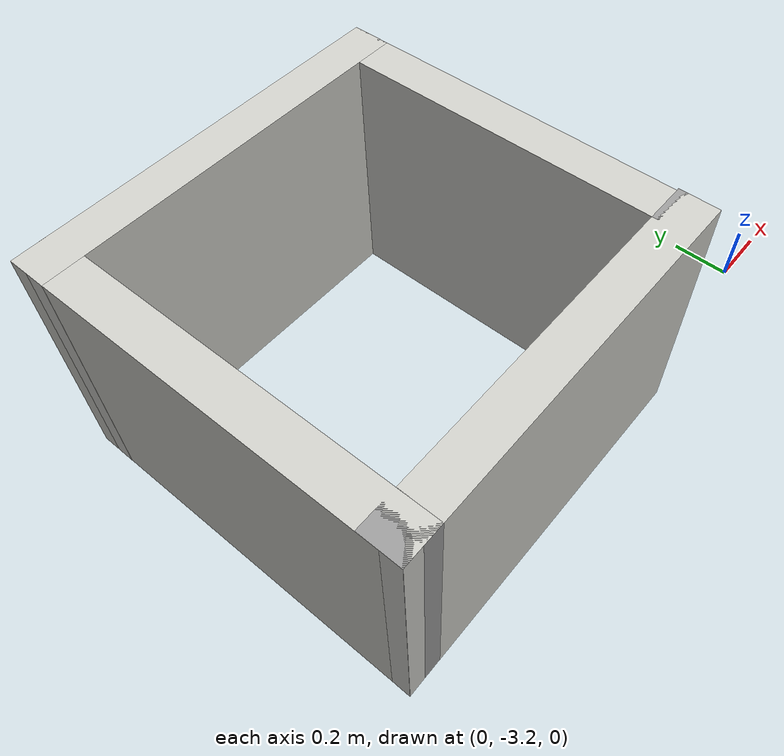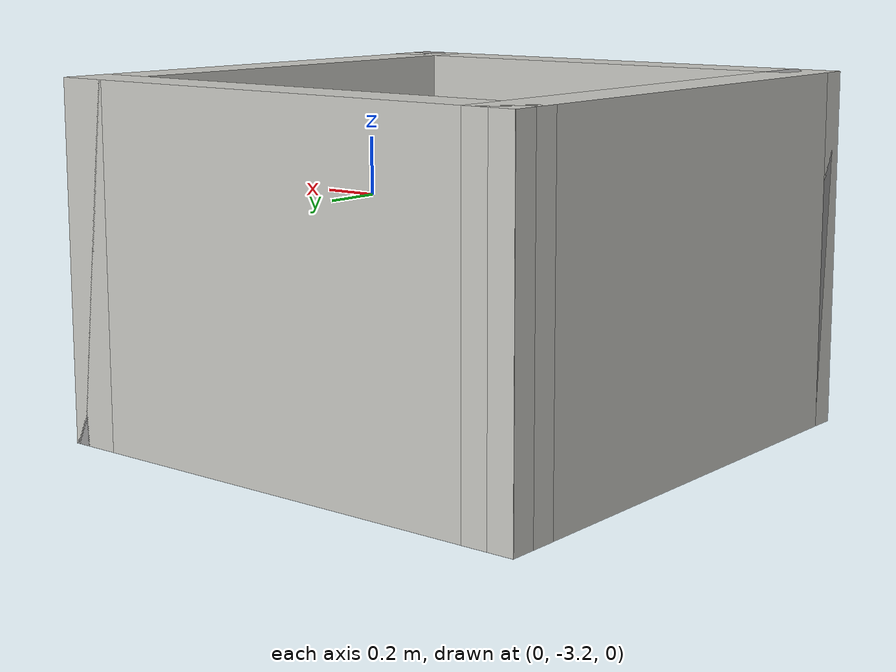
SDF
<?xml version='1.0'?>
<sdf version='1.6'>
  <model name='cap_test'>
    <pose frame=''>-1.01028 -2.435 0 0 -0 0</pose>
    <link name='Wall_0'>
      <collision name='Wall_0_Collision'>
        <geometry>
          <box>
            <size>1.5 0.15 1</size>
          </box>
        </geometry>
        <pose frame=''>0 0 0 0 -0 0</pose>
      </collision>
      <visual name='Wall_0_Visual'>
        <pose frame=''>0 0 0 0 -0 0</pose>
        <geometry>
          <box>
            <size>1.5 0.15 1</size>
          </box>
        </geometry>
        <material>
          <script>
            <uri>file://media/materials/scripts/gazebo.material</uri>
            <name>Gazebo/CeilingTiled</name>
          </script>
          <ambient>1 1 1 1</ambient>
        </material>
        <meta>
          <layer>0</layer>
        </meta>
      </visual>
      <pose frame=''>-0.004723 0.675 0 0 -0 0</pose>
    </link>
    <link name='Wall_1'>
      <collision name='Wall_1_Collision'>
        <geometry>
          <box>
            <size>0.15 0.15 1</size>
          </box>
        </geometry>
        <pose frame=''>0 0 0 0 -0 0</pose>
      </collision>
      <visual name='Wall_1_Visual'>
        <pose frame=''>0 0 0 0 -0 0</pose>
        <geometry>
          <box>
            <size>0.15 0.15 1</size>
          </box>
        </geometry>
        <material>
          <script>
            <uri>file://media/materials/scripts/gazebo.material</uri>
            <name>Gazebo/Grey</name>
          </script>
          <ambient>1 1 1 1</ambient>
        </material>
        <meta>
          <layer>0</layer>
        </meta>
      </visual>
      <pose frame=''>0.670277 0.675 0 0 -0 0</pose>
    </link>
    <link name='Wall_2'>
      <collision name='Wall_2_Collision'>
        <geometry>
          <box>
            <size>1.5 0.15 1</size>
          </box>
        </geometry>
        <pose frame=''>0 0 0 0 -0 0</pose>
      </collision>
      <visual name='Wall_2_Visual'>
        <pose frame=''>0 0 0 0 -0 0</pose>
        <geometry>
          <box>
            <size>1.5 0.15 1</size>
          </box>
        </geometry>
        <material>
          <script>
            <uri>file://media/materials/scripts/gazebo.material</uri>
            <name>Gazebo/CeilingTiled</name>
          </script>
          <ambient>1 1 1 1</ambient>
        </material>
        <meta>
          <layer>0</layer>
        </meta>
      </visual>
      <pose frame=''>0.670277 0 0 0 -0 -1.5708</pose>
    </link>
    <link name='Wall_3'>
      <collision name='Wall_3_Collision'>
        <geometry>
          <box>
            <size>0.16 0.15 1</size>
          </box>
        </geometry>
        <pose frame=''>0 0 0 0 -0 0</pose>
      </collision>
      <visual name='Wall_3_Visual'>
        <pose frame=''>0 0 0 0 -0 0</pose>
        <geometry>
          <box>
            <size>0.16 0.15 1</size>
          </box>
        </geometry>
        <material>
          <script>
            <uri>file://media/materials/scripts/gazebo.material</uri>
            <name>Gazebo/Grey</name>
          </script>
          <ambient>1 1 1 1</ambient>
        </material>
        <meta>
          <layer>0</layer>
        </meta>
      </visual>
      <pose frame=''>0.675277 -0.675 0 0 -0 0</pose>
    </link>
    <link name='Wall_4'>
      <collision name='Wall_4_Collision'>
        <geometry>
          <box>
            <size>1.5 0.15 1</size>
          </box>
        </geometry>
        <pose frame=''>0 0 0 0 -0 0</pose>
      </collision>
      <visual name='Wall_4_Visual'>
        <pose frame=''>0 0 0 0 -0 0</pose>
        <geometry>
          <box>
            <size>1.5 0.15 1</size>
          </box>
        </geometry>
        <material>
          <script>
            <uri>file://media/materials/scripts/gazebo.material</uri>
            <name>Gazebo/CeilingTiled</name>
          </script>
          <ambient>1 1 1 1</ambient>
        </material>
        <meta>
          <layer>0</layer>
        </meta>
      </visual>
      <pose frame=''>0.005277 -0.675 0 0 -0 3.14159</pose>
    </link>
    <link name='Wall_5'>
      <collision name='Wall_5_Collision'>
        <geometry>
          <box>
            <size>0.15 0.15 1</size>
          </box>
        </geometry>
        <pose frame=''>0 0 0 0 -0 0</pose>
      </collision>
      <visual name='Wall_5_Visual'>
        <pose frame=''>0 0 0 0 -0 0</pose>
        <geometry>
          <box>
            <size>0.15 0.15 1</size>
          </box>
        </geometry>
        <material>
          <script>
            <uri>file://media/materials/scripts/gazebo.material</uri>
            <name>Gazebo/Grey</name>
          </script>
          <ambient>1 1 1 1</ambient>
        </material>
        <meta>
          <layer>0</layer>
        </meta>
      </visual>
      <pose frame=''>-0.669723 -0.675 0 0 -0 0</pose>
    </link>
    <link name='Wall_6'>
      <collision name='Wall_6_Collision'>
        <geometry>
          <box>
            <size>1.50004 0.15 1</size>
          </box>
        </geometry>
        <pose frame=''>0 0 0 0 -0 0</pose>
      </collision>
      <visual name='Wall_6_Visual'>
        <pose frame=''>0 0 0 0 -0 0</pose>
        <geometry>
          <box>
            <size>1.50004 0.15 1</size>
          </box>
        </geometry>
        <material>
          <script>
            <uri>file://media/materials/scripts/gazebo.material</uri>
            <name>Gazebo/CeilingTiled</name>
          </script>
          <ambient>1 1 1 1</ambient>
        </material>
        <meta>
          <layer>0</layer>
        </meta>
      </visual>
      <pose frame=''>-0.674723 0 0 0 -0 1.5782</pose>
    </link>
    <static>1</static>
  </model>
</sdf>
